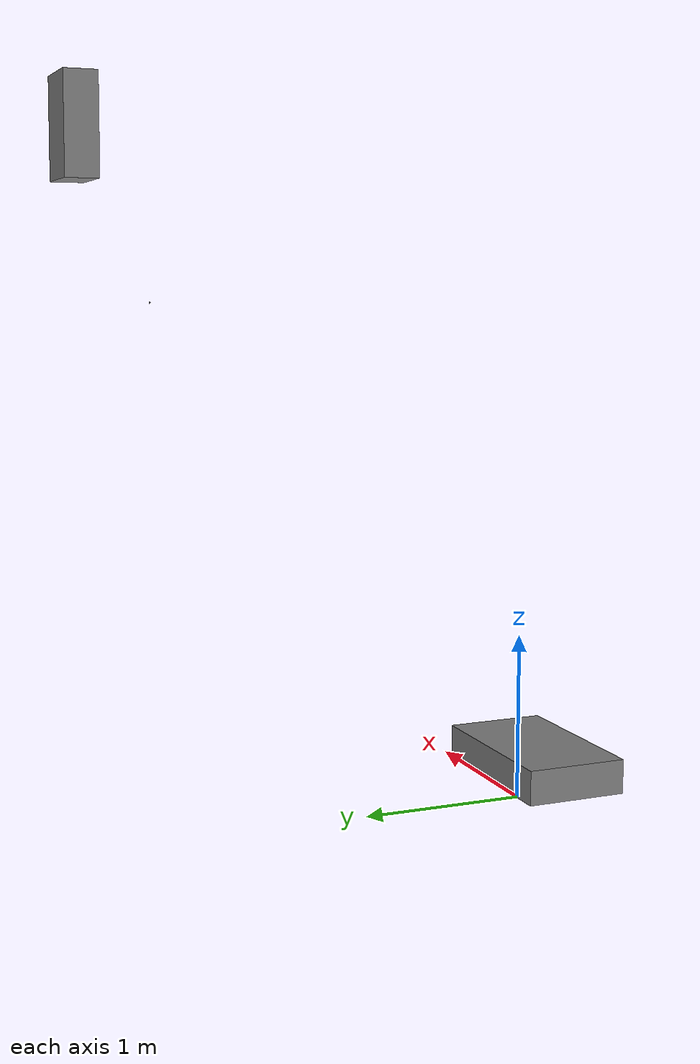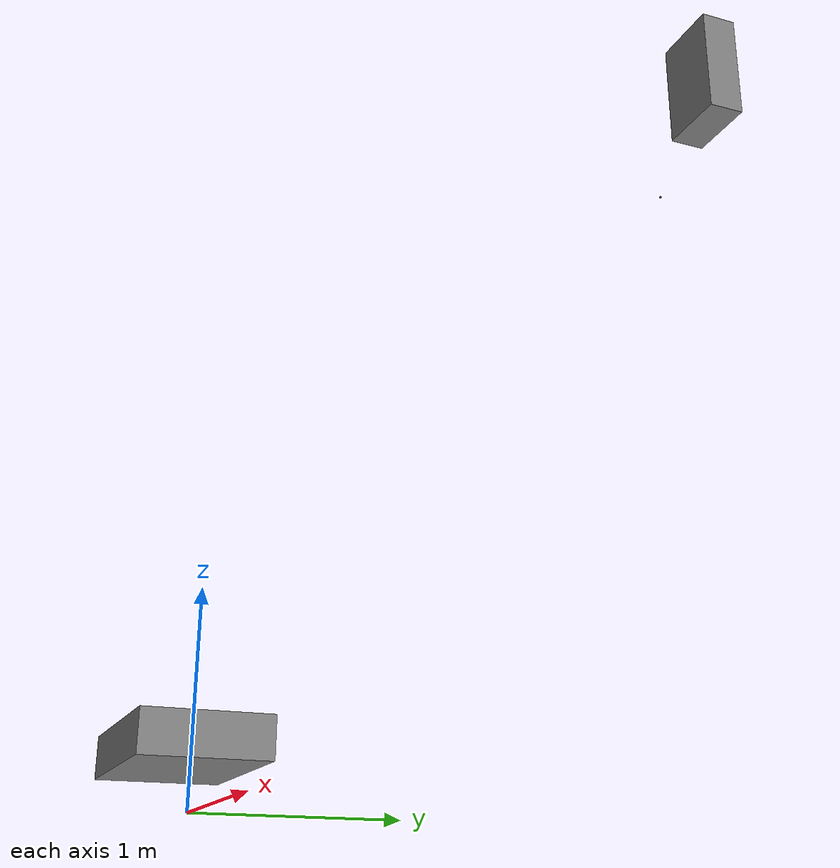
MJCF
<mujoco model="parent">
  <worldbody>
    <body>
      <geom name="foo" type="box" pos="-0.2 0 0.3" size="0.5 0.3 0.1"/>
      <site name="attachment_site" pos="1. 2. 3." quat="1. 0. 0. 1."/>
      <body name="child/" pos="1. 2. 3." quat="1. 0. 0. 1.">
        <geom name="child/my_box" type="box" pos="0.5 0.25 1." size="0.1 0.2 0.3"/>
      </body>
    </body>
  </worldbody>
</mujoco>
